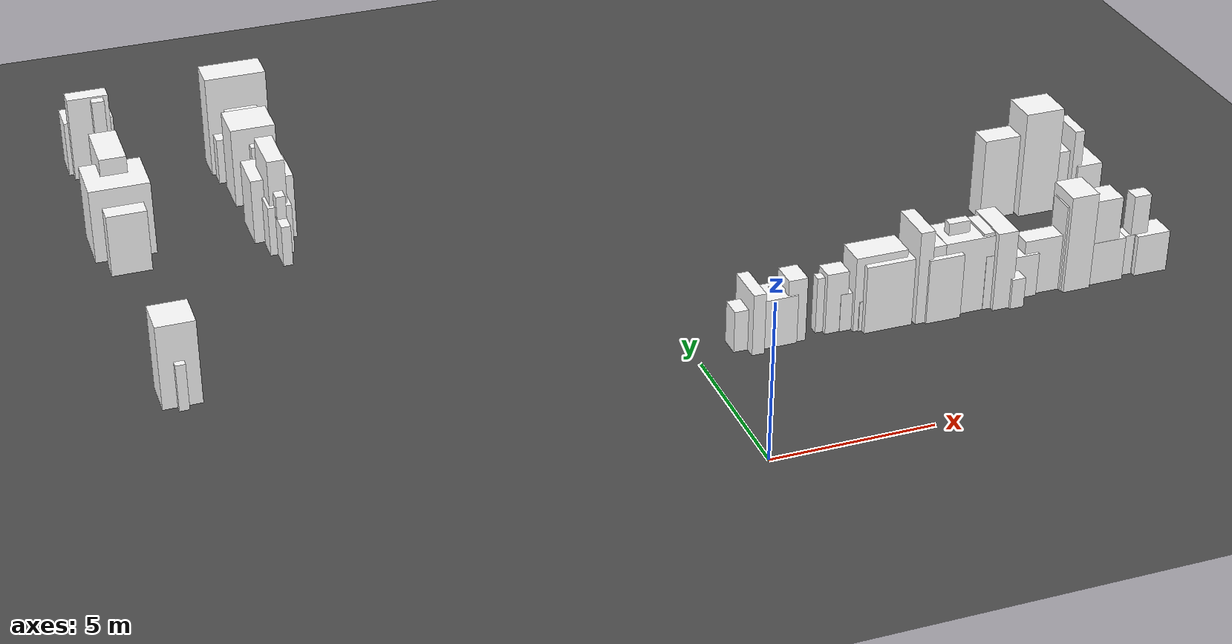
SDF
<sdf version="1.6">
 <world name="mirror_edge_world">
  <model name="ground_plane">
   <static>true</static>
   <link name="link">
    <collision name="collision">
     <geometry><plane><normal>0 0 1</normal><size>100 100</size></plane></geometry>
    </collision>
    <visual name="visual">
     <geometry><plane><normal>0 0 1</normal><size>100 100</size></plane></geometry>
     <material>
      <ambient>0.3 0.3 0.3 1</ambient>
      <diffuse>0.3 0.3 0.3 1</diffuse>
      <specular>0.5 0.5 0.5 1</specular>
      <emissive>0 0 0 1</emissive>
     </material>
    </visual>
   </link>
  </model>
  <model name="roadside_block_2_0_0">
   <static>true</static>
   <link name="link">
    <pose>15.024 10.225745282685848 0.7392112787471503 0 0 0</pose>
    <collision name="collision">
     <geometry><box><size>0.875464636903629 1.2997601926188684 1.4784225574943006</size></box></geometry>
    </collision>
    <visual name="visual">
     <geometry><box><size>0.875464636903629 1.2997601926188684 1.4784225574943006</size></box></geometry>
     <material>
      <ambient>1 1 1 1</ambient>
      <diffuse>1 1 1 1</diffuse>
      <specular>0.9 0.9 0.9 1</specular>
      <emissive>0.05 0.05 0.05 1</emissive>
     </material>
    </visual>
   </link>
  </model>
  <model name="roadside_block_2_1_0">
   <static>true</static>
   <link name="link">
    <pose>14.806410502135428 5.625745282685848 0.6816227601099163 0 0 0</pose>
    <collision name="collision">
     <geometry><box><size>1.0986000765713264 0.7998851724508571 1.3632455202198326</size></box></geometry>
    </collision>
    <visual name="visual">
     <geometry><box><size>1.0986000765713264 0.7998851724508571 1.3632455202198326</size></box></geometry>
     <material>
      <ambient>1 1 1 1</ambient>
      <diffuse>1 1 1 1</diffuse>
      <specular>0.9 0.9 0.9 1</specular>
      <emissive>0.05 0.05 0.05 1</emissive>
     </material>
    </visual>
   </link>
  </model>
  <model name="roadside_block_2_2_0">
   <static>true</static>
   <link name="link">
    <pose>14.588821004270857 10.225745282685848 1.3508811211009384 0 0 0</pose>
    <collision name="collision">
     <geometry><box><size>0.3259141878140027 1.1376463748460983 2.7017622422018768</size></box></geometry>
    </collision>
    <visual name="visual">
     <geometry><box><size>0.3259141878140027 1.1376463748460983 2.7017622422018768</size></box></geometry>
     <material>
      <ambient>1 1 1 1</ambient>
      <diffuse>1 1 1 1</diffuse>
      <specular>0.9 0.9 0.9 1</specular>
      <emissive>0.05 0.05 0.05 1</emissive>
     </material>
    </visual>
   </link>
  </model>
  <model name="roadside_block_2_3_0">
   <static>true</static>
   <link name="link">
    <pose>14.371231506406284 5.625745282685848 1.3418515928122832 0 0 0</pose>
    <collision name="collision">
     <geometry><box><size>0.5661171889919616 0.4622469377784506 2.6837031856245663</size></box></geometry>
    </collision>
    <visual name="visual">
     <geometry><box><size>0.5661171889919616 0.4622469377784506 2.6837031856245663</size></box></geometry>
     <material>
      <ambient>1 1 1 1</ambient>
      <diffuse>1 1 1 1</diffuse>
      <specular>0.9 0.9 0.9 1</specular>
      <emissive>0.05 0.05 0.05 1</emissive>
     </material>
    </visual>
   </link>
  </model>
  <model name="roadside_block_2_4_0">
   <static>true</static>
   <link name="link">
    <pose>14.153642008541713 10.225745282685848 1.0076449592887782 0 0 0</pose>
    <collision name="collision">
     <geometry><box><size>0.36960306574495383 0.9781908834425072 2.0152899185775563</size></box></geometry>
    </collision>
    <visual name="visual">
     <geometry><box><size>0.36960306574495383 0.9781908834425072 2.0152899185775563</size></box></geometry>
     <material>
      <ambient>1 1 1 1</ambient>
      <diffuse>1 1 1 1</diffuse>
      <specular>0.9 0.9 0.9 1</specular>
      <emissive>0.05 0.05 0.05 1</emissive>
     </material>
    </visual>
   </link>
  </model>
  <model name="roadside_block_2_6_0">
   <static>true</static>
   <link name="link">
    <pose>13.71846301281257 5.625745282685848 0.684649692873863 0 0 0</pose>
    <collision name="collision">
     <geometry><box><size>1.016758035561917 0.49040016937201014 1.369299385747726</size></box></geometry>
    </collision>
    <visual name="visual">
     <geometry><box><size>1.016758035561917 0.49040016937201014 1.369299385747726</size></box></geometry>
     <material>
      <ambient>1 1 1 1</ambient>
      <diffuse>1 1 1 1</diffuse>
      <specular>0.9 0.9 0.9 1</specular>
      <emissive>0.05 0.05 0.05 1</emissive>
     </material>
    </visual>
   </link>
  </model>
  <model name="roadside_block_2_7_0">
   <static>true</static>
   <link name="link">
    <pose>13.500873514947997 5.625745282685848 0.5940786670897297 0 0 0</pose>
    <collision name="collision">
     <geometry><box><size>1.1511751146548694 0.4660216357109791 1.1881573341794593</size></box></geometry>
    </collision>
    <visual name="visual">
     <geometry><box><size>1.1511751146548694 0.4660216357109791 1.1881573341794593</size></box></geometry>
     <material>
      <ambient>1 1 1 1</ambient>
      <diffuse>1 1 1 1</diffuse>
      <specular>0.9 0.9 0.9 1</specular>
      <emissive>0.05 0.05 0.05 1</emissive>
     </material>
    </visual>
   </link>
  </model>
  <model name="roadside_block_2_8_0">
   <static>true</static>
   <link name="link">
    <pose>13.283284017083426 10.225745282685848 1.8061902629708992 0 0 0</pose>
    <collision name="collision">
     <geometry><box><size>1.2891286349243378 1.1397333269764163 3.6123805259417985</size></box></geometry>
    </collision>
    <visual name="visual">
     <geometry><box><size>1.2891286349243378 1.1397333269764163 3.6123805259417985</size></box></geometry>
     <material>
      <ambient>1 1 1 1</ambient>
      <diffuse>1 1 1 1</diffuse>
      <specular>0.9 0.9 0.9 1</specular>
      <emissive>0.05 0.05 0.05 1</emissive>
     </material>
    </visual>
   </link>
  </model>
  <model name="roadside_block_2_9_0">
   <static>true</static>
   <link name="link">
    <pose>13.065694519218855 5.625745282685848 0.7224438248397338 0 0 0</pose>
    <collision name="collision">
     <geometry><box><size>1.4879687464066742 0.8666210727683945 1.4448876496794676</size></box></geometry>
    </collision>
    <visual name="visual">
     <geometry><box><size>1.4879687464066742 0.8666210727683945 1.4448876496794676</size></box></geometry>
     <material>
      <ambient>1 1 1 1</ambient>
      <diffuse>1 1 1 1</diffuse>
      <specular>0.9 0.9 0.9 1</specular>
      <emissive>0.05 0.05 0.05 1</emissive>
     </material>
    </visual>
   </link>
  </model>
  <model name="roadside_block_2_11_0">
   <static>true</static>
   <link name="link">
    <pose>12.630515523489713 5.625745282685848 1.4378195927758939 0 0 0</pose>
    <collision name="collision">
     <geometry><box><size>1.8699455723380374 0.8370411406838096 2.8756391855517878</size></box></geometry>
    </collision>
    <visual name="visual">
     <geometry><box><size>1.8699455723380374 0.8370411406838096 2.8756391855517878</size></box></geometry>
     <material>
      <ambient>1 1 1 1</ambient>
      <diffuse>1 1 1 1</diffuse>
      <specular>0.9 0.9 0.9 1</specular>
      <emissive>0.05 0.05 0.05 1</emissive>
     </material>
    </visual>
   </link>
  </model>
  <model name="roadside_block_2_12_0">
   <static>true</static>
   <link name="link">
    <pose>12.41292602562514 5.625745282685848 0.8191820796079754 0 0 0</pose>
    <collision name="collision">
     <geometry><box><size>1.9093089087806527 0.4943392511295205 1.6383641592159508</size></box></geometry>
    </collision>
    <visual name="visual">
     <geometry><box><size>1.9093089087806527 0.4943392511295205 1.6383641592159508</size></box></geometry>
     <material>
      <ambient>1 1 1 1</ambient>
      <diffuse>1 1 1 1</diffuse>
      <specular>0.9 0.9 0.9 1</specular>
      <emissive>0.05 0.05 0.05 1</emissive>
     </material>
    </visual>
   </link>
  </model>
  <model name="roadside_block_2_13_0">
   <static>true</static>
   <link name="link">
    <pose>12.195336527760569 5.625745282685848 1.6221584084387435 0 0 0</pose>
    <collision name="collision">
     <geometry><box><size>0.8820507279403396 1.1065030425565325 3.244316816877487</size></box></geometry>
    </collision>
    <visual name="visual">
     <geometry><box><size>0.8820507279403396 1.1065030425565325 3.244316816877487</size></box></geometry>
     <material>
      <ambient>1 1 1 1</ambient>
      <diffuse>1 1 1 1</diffuse>
      <specular>0.9 0.9 0.9 1</specular>
      <emissive>0.05 0.05 0.05 1</emissive>
     </material>
    </visual>
   </link>
  </model>
  <model name="roadside_block_2_14_0">
   <static>true</static>
   <link name="link">
    <pose>11.977747029895998 10.225745282685848 1.3987507540319954 0 0 0</pose>
    <collision name="collision">
     <geometry><box><size>1.1972819331040898 0.7495918262454584 2.797501508063991</size></box></geometry>
    </collision>
    <visual name="visual">
     <geometry><box><size>1.1972819331040898 0.7495918262454584 2.797501508063991</size></box></geometry>
     <material>
      <ambient>1 1 1 1</ambient>
      <diffuse>1 1 1 1</diffuse>
      <specular>0.9 0.9 0.9 1</specular>
      <emissive>0.05 0.05 0.05 1</emissive>
     </material>
    </visual>
   </link>
  </model>
  <model name="roadside_block_2_15_0">
   <static>true</static>
   <link name="link">
    <pose>11.760157532031425 10.225745282685848 1.281572895151831 0 0 0</pose>
    <collision name="collision">
     <geometry><box><size>0.6304292532576977 0.3 2.563145790303662</size></box></geometry>
    </collision>
    <visual name="visual">
     <geometry><box><size>0.6304292532576977 0.3 2.563145790303662</size></box></geometry>
     <material>
      <ambient>1 1 1 1</ambient>
      <diffuse>1 1 1 1</diffuse>
      <specular>0.9 0.9 0.9 1</specular>
      <emissive>0.05 0.05 0.05 1</emissive>
     </material>
    </visual>
   </link>
  </model>
  <model name="roadside_block_2_17_0">
   <static>true</static>
   <link name="link">
    <pose>11.324978536302282 5.625745282685848 0.9364943608962275 0 0 0</pose>
    <collision name="collision">
     <geometry><box><size>1.7507696647201454 0.6232643454699023 1.872988721792455</size></box></geometry>
    </collision>
    <visual name="visual">
     <geometry><box><size>1.7507696647201454 0.6232643454699023 1.872988721792455</size></box></geometry>
     <material>
      <ambient>1 1 1 1</ambient>
      <diffuse>1 1 1 1</diffuse>
      <specular>0.9 0.9 0.9 1</specular>
      <emissive>0.05 0.05 0.05 1</emissive>
     </material>
    </visual>
   </link>
  </model>
  <model name="roadside_block_2_21_0">
   <static>true</static>
   <link name="link">
    <pose>10.454620544843998 5.625745282685848 0.7254934506901063 0 0 0</pose>
    <collision name="collision">
     <geometry><box><size>0.8888263328184823 0.8073871088111115 1.4509869013802126</size></box></geometry>
    </collision>
    <visual name="visual">
     <geometry><box><size>0.8888263328184823 0.8073871088111115 1.4509869013802126</size></box></geometry>
     <material>
      <ambient>1 1 1 1</ambient>
      <diffuse>1 1 1 1</diffuse>
      <specular>0.9 0.9 0.9 1</specular>
      <emissive>0.05 0.05 0.05 1</emissive>
     </material>
    </visual>
   </link>
  </model>
  <model name="roadside_block_2_23_0">
   <static>true</static>
   <link name="link">
    <pose>10.019441549114854 5.625745282685848 0.5 0 0 0</pose>
    <collision name="collision">
     <geometry><box><size>0.4397146706919446 1.7392100506458879 1.0</size></box></geometry>
    </collision>
    <visual name="visual">
     <geometry><box><size>0.4397146706919446 1.7392100506458879 1.0</size></box></geometry>
     <material>
      <ambient>1 1 1 1</ambient>
      <diffuse>1 1 1 1</diffuse>
      <specular>0.9 0.9 0.9 1</specular>
      <emissive>0.05 0.05 0.05 1</emissive>
     </material>
    </visual>
   </link>
  </model>
  <model name="roadside_block_2_24_0">
   <static>true</static>
   <link name="link">
    <pose>9.801852051250282 5.625745282685848 0.5650983615844606 0 0 0</pose>
    <collision name="collision">
     <geometry><box><size>0.377347500438611 0.534883181322112 1.1301967231689212</size></box></geometry>
    </collision>
    <visual name="visual">
     <geometry><box><size>0.377347500438611 0.534883181322112 1.1301967231689212</size></box></geometry>
     <material>
      <ambient>1 1 1 1</ambient>
      <diffuse>1 1 1 1</diffuse>
      <specular>0.9 0.9 0.9 1</specular>
      <emissive>0.05 0.05 0.05 1</emissive>
     </material>
    </visual>
   </link>
  </model>
  <model name="roadside_block_2_25_0">
   <static>true</static>
   <link name="link">
    <pose>9.58426255338571 5.625745282685848 1.3097937690902584 0 0 0</pose>
    <collision name="collision">
     <geometry><box><size>0.6473917431543921 1.5448653515222426 2.6195875381805167</size></box></geometry>
    </collision>
    <visual name="visual">
     <geometry><box><size>0.6473917431543921 1.5448653515222426 2.6195875381805167</size></box></geometry>
     <material>
      <ambient>1 1 1 1</ambient>
      <diffuse>1 1 1 1</diffuse>
      <specular>0.9 0.9 0.9 1</specular>
      <emissive>0.05 0.05 0.05 1</emissive>
     </material>
    </visual>
   </link>
  </model>
  <model name="roadside_block_2_26_0">
   <static>true</static>
   <link name="link">
    <pose>9.366673055521138 5.625745282685848 1.2861534201541427 0 0 0</pose>
    <collision name="collision">
     <geometry><box><size>0.9328490559386542 1.0921323173060935 2.5723068403082854</size></box></geometry>
    </collision>
    <visual name="visual">
     <geometry><box><size>0.9328490559386542 1.0921323173060935 2.5723068403082854</size></box></geometry>
     <material>
      <ambient>1 1 1 1</ambient>
      <diffuse>1 1 1 1</diffuse>
      <specular>0.9 0.9 0.9 1</specular>
      <emissive>0.05 0.05 0.05 1</emissive>
     </material>
    </visual>
   </link>
  </model>
  <model name="roadside_block_2_27_0">
   <static>true</static>
   <link name="link">
    <pose>9.149083557656567 5.625745282685848 0.9105115828980395 0 0 0</pose>
    <collision name="collision">
     <geometry><box><size>0.3 1.242056437089518 1.821023165796079</size></box></geometry>
    </collision>
    <visual name="visual">
     <geometry><box><size>0.3 1.242056437089518 1.821023165796079</size></box></geometry>
     <material>
      <ambient>1 1 1 1</ambient>
      <diffuse>1 1 1 1</diffuse>
      <specular>0.9 0.9 0.9 1</specular>
      <emissive>0.05 0.05 0.05 1</emissive>
     </material>
    </visual>
   </link>
  </model>
  <model name="roadside_block_2_29_0">
   <static>true</static>
   <link name="link">
    <pose>8.713904561927425 5.625745282685848 1.1093169958436653 0 0 0</pose>
    <collision name="collision">
     <geometry><box><size>0.9419943427055666 1.1610717700852198 2.2186339916873306</size></box></geometry>
    </collision>
    <visual name="visual">
     <geometry><box><size>0.9419943427055666 1.1610717700852198 2.2186339916873306</size></box></geometry>
     <material>
      <ambient>1 1 1 1</ambient>
      <diffuse>1 1 1 1</diffuse>
      <specular>0.9 0.9 0.9 1</specular>
      <emissive>0.05 0.05 0.05 1</emissive>
     </material>
    </visual>
   </link>
  </model>
  <model name="roadside_block_2_30_0">
   <static>true</static>
   <link name="link">
    <pose>8.496315064062852 5.625745282685848 1.2475207114335407 0 0 0</pose>
    <collision name="collision">
     <geometry><box><size>1.6836392393170128 1.2122312203658199 2.4950414228670814</size></box></geometry>
    </collision>
    <visual name="visual">
     <geometry><box><size>1.6836392393170128 1.2122312203658199 2.4950414228670814</size></box></geometry>
     <material>
      <ambient>1 1 1 1</ambient>
      <diffuse>1 1 1 1</diffuse>
      <specular>0.9 0.9 0.9 1</specular>
      <emissive>0.05 0.05 0.05 1</emissive>
     </material>
    </visual>
   </link>
  </model>
  <model name="roadside_block_2_31_0">
   <static>true</static>
   <link name="link">
    <pose>8.27872556619828 5.625745282685848 1.4429809764240809 0 0 0</pose>
    <collision name="collision">
     <geometry><box><size>0.6828986159765528 0.3 2.8859619528481617</size></box></geometry>
    </collision>
    <visual name="visual">
     <geometry><box><size>0.6828986159765528 0.3 2.8859619528481617</size></box></geometry>
     <material>
      <ambient>1 1 1 1</ambient>
      <diffuse>1 1 1 1</diffuse>
      <specular>0.9 0.9 0.9 1</specular>
      <emissive>0.05 0.05 0.05 1</emissive>
     </material>
    </visual>
   </link>
  </model>
  <model name="roadside_block_2_33_0">
   <static>true</static>
   <link name="link">
    <pose>7.8435465704691385 5.625745282685848 0.8183533737171017 0 0 0</pose>
    <collision name="collision">
     <geometry><box><size>0.8457081302143774 0.6446204095163376 1.6367067474342034</size></box></geometry>
    </collision>
    <visual name="visual">
     <geometry><box><size>0.8457081302143774 0.6446204095163376 1.6367067474342034</size></box></geometry>
     <material>
      <ambient>1 1 1 1</ambient>
      <diffuse>1 1 1 1</diffuse>
      <specular>0.9 0.9 0.9 1</specular>
      <emissive>0.05 0.05 0.05 1</emissive>
     </material>
    </visual>
   </link>
  </model>
  <model name="roadside_block_2_34_0">
   <static>true</static>
   <link name="link">
    <pose>7.6259570726045665 5.625745282685848 1.0745291054411872 0 0 0</pose>
    <collision name="collision">
     <geometry><box><size>1.118545673101547 1.5604264048902343 2.1490582108823744</size></box></geometry>
    </collision>
    <visual name="visual">
     <geometry><box><size>1.118545673101547 1.5604264048902343 2.1490582108823744</size></box></geometry>
     <material>
      <ambient>1 1 1 1</ambient>
      <diffuse>1 1 1 1</diffuse>
      <specular>0.9 0.9 0.9 1</specular>
      <emissive>0.05 0.05 0.05 1</emissive>
     </material>
    </visual>
   </link>
  </model>
  <model name="roadside_block_2_35_0">
   <static>true</static>
   <link name="link">
    <pose>7.408367574739995 5.625745282685848 1.2415592631322383 0 0 0</pose>
    <collision name="collision">
     <geometry><box><size>0.5300787888104126 1.2003849598340577 2.4831185262644766</size></box></geometry>
    </collision>
    <visual name="visual">
     <geometry><box><size>0.5300787888104126 1.2003849598340577 2.4831185262644766</size></box></geometry>
     <material>
      <ambient>1 1 1 1</ambient>
      <diffuse>1 1 1 1</diffuse>
      <specular>0.9 0.9 0.9 1</specular>
      <emissive>0.05 0.05 0.05 1</emissive>
     </material>
    </visual>
   </link>
  </model>
  <model name="roadside_block_2_37_0">
   <static>true</static>
   <link name="link">
    <pose>6.973188579010852 5.625745282685848 1.5500684517326162 0 0 0</pose>
    <collision name="collision">
     <geometry><box><size>0.4475471592505803 1.4016279920455692 3.1001369034652324</size></box></geometry>
    </collision>
    <visual name="visual">
     <geometry><box><size>0.4475471592505803 1.4016279920455692 3.1001369034652324</size></box></geometry>
     <material>
      <ambient>1 1 1 1</ambient>
      <diffuse>1 1 1 1</diffuse>
      <specular>0.9 0.9 0.9 1</specular>
      <emissive>0.05 0.05 0.05 1</emissive>
     </material>
    </visual>
   </link>
  </model>
  <model name="roadside_block_2_41_0">
   <static>true</static>
   <link name="link">
    <pose>6.102830587552566 5.625745282685848 0.5 0 0 0</pose>
    <collision name="collision">
     <geometry><box><size>0.9813053210772473 1.144828462115135 1.0</size></box></geometry>
    </collision>
    <visual name="visual">
     <geometry><box><size>0.9813053210772473 1.144828462115135 1.0</size></box></geometry>
     <material>
      <ambient>1 1 1 1</ambient>
      <diffuse>1 1 1 1</diffuse>
      <specular>0.9 0.9 0.9 1</specular>
      <emissive>0.05 0.05 0.05 1</emissive>
     </material>
    </visual>
   </link>
  </model>
  <model name="roadside_block_2_42_0">
   <static>true</static>
   <link name="link">
    <pose>5.8852410896879945 5.625745282685848 1.119169136387194 0 0 0</pose>
    <collision name="collision">
     <geometry><box><size>1.538181435591897 1.3225595828420866 2.238338272774388</size></box></geometry>
    </collision>
    <visual name="visual">
     <geometry><box><size>1.538181435591897 1.3225595828420866 2.238338272774388</size></box></geometry>
     <material>
      <ambient>1 1 1 1</ambient>
      <diffuse>1 1 1 1</diffuse>
      <specular>0.9 0.9 0.9 1</specular>
      <emissive>0.05 0.05 0.05 1</emissive>
     </material>
    </visual>
   </link>
  </model>
  <model name="roadside_block_2_43_0">
   <static>true</static>
   <link name="link">
    <pose>5.667651591823423 5.625745282685848 1.2390401314312374 0 0 0</pose>
    <collision name="collision">
     <geometry><box><size>1.6352935257911303 0.9194360433414047 2.4780802628624747</size></box></geometry>
    </collision>
    <visual name="visual">
     <geometry><box><size>1.6352935257911303 0.9194360433414047 2.4780802628624747</size></box></geometry>
     <material>
      <ambient>1 1 1 1</ambient>
      <diffuse>1 1 1 1</diffuse>
      <specular>0.9 0.9 0.9 1</specular>
      <emissive>0.05 0.05 0.05 1</emissive>
     </material>
    </visual>
   </link>
  </model>
  <model name="roadside_block_2_44_0">
   <static>true</static>
   <link name="link">
    <pose>5.450062093958852 5.625745282685848 0.5 0 0 0</pose>
    <collision name="collision">
     <geometry><box><size>0.8848753095310729 0.9933390188270225 1.0</size></box></geometry>
    </collision>
    <visual name="visual">
     <geometry><box><size>0.8848753095310729 0.9933390188270225 1.0</size></box></geometry>
     <material>
      <ambient>1 1 1 1</ambient>
      <diffuse>1 1 1 1</diffuse>
      <specular>0.9 0.9 0.9 1</specular>
      <emissive>0.05 0.05 0.05 1</emissive>
     </material>
    </visual>
   </link>
  </model>
  <model name="roadside_block_2_47_0">
   <static>true</static>
   <link name="link">
    <pose>4.797293600365137 5.625745282685848 0.630701854843766 0 0 0</pose>
    <collision name="collision">
     <geometry><box><size>0.6485924883113862 0.6496862465946156 1.261403709687532</size></box></geometry>
    </collision>
    <visual name="visual">
     <geometry><box><size>0.6485924883113862 0.6496862465946156 1.261403709687532</size></box></geometry>
     <material>
      <ambient>1 1 1 1</ambient>
      <diffuse>1 1 1 1</diffuse>
      <specular>0.9 0.9 0.9 1</specular>
      <emissive>0.05 0.05 0.05 1</emissive>
     </material>
    </visual>
   </link>
  </model>
  <model name="roadside_block_2_49_0">
   <static>true</static>
   <link name="link">
    <pose>4.362114604635993 5.625745282685848 1.0061796800950575 0 0 0</pose>
    <collision name="collision">
     <geometry><box><size>0.6909435659374051 0.6170834770391131 2.012359360190115</size></box></geometry>
    </collision>
    <visual name="visual">
     <geometry><box><size>0.6909435659374051 0.6170834770391131 2.012359360190115</size></box></geometry>
     <material>
      <ambient>1 1 1 1</ambient>
      <diffuse>1 1 1 1</diffuse>
      <specular>0.9 0.9 0.9 1</specular>
      <emissive>0.05 0.05 0.05 1</emissive>
     </material>
    </visual>
   </link>
  </model>
  <model name="roadside_block_2_51_0">
   <static>true</static>
   <link name="link">
    <pose>3.9269356089068506 5.625745282685848 0.9243851315562086 0 0 0</pose>
    <collision name="collision">
     <geometry><box><size>0.3 0.3 1.8487702631124172</size></box></geometry>
    </collision>
    <visual name="visual">
     <geometry><box><size>0.3 0.3 1.8487702631124172</size></box></geometry>
     <material>
      <ambient>1 1 1 1</ambient>
      <diffuse>1 1 1 1</diffuse>
      <specular>0.9 0.9 0.9 1</specular>
      <emissive>0.05 0.05 0.05 1</emissive>
     </material>
    </visual>
   </link>
  </model>
  <model name="roadside_block_2_55_0">
   <static>true</static>
   <link name="link">
    <pose>3.056577617448564 5.625745282685848 1.0588972090571627 0 0 0</pose>
    <collision name="collision">
     <geometry><box><size>0.596492149771056 0.8109844572468692 2.1177944181143253</size></box></geometry>
    </collision>
    <visual name="visual">
     <geometry><box><size>0.596492149771056 0.8109844572468692 2.1177944181143253</size></box></geometry>
     <material>
      <ambient>1 1 1 1</ambient>
      <diffuse>1 1 1 1</diffuse>
      <specular>0.9 0.9 0.9 1</specular>
      <emissive>0.05 0.05 0.05 1</emissive>
     </material>
    </visual>
   </link>
  </model>
  <model name="roadside_block_2_56_0">
   <static>true</static>
   <link name="link">
    <pose>2.838988119583991 5.625745282685848 0.8558804624113636 0 0 0</pose>
    <collision name="collision">
     <geometry><box><size>0.9788149758778678 0.3245332059006778 1.7117609248227272</size></box></geometry>
    </collision>
    <visual name="visual">
     <geometry><box><size>0.9788149758778678 0.3245332059006778 1.7117609248227272</size></box></geometry>
     <material>
      <ambient>1 1 1 1</ambient>
      <diffuse>1 1 1 1</diffuse>
      <specular>0.9 0.9 0.9 1</specular>
      <emissive>0.05 0.05 0.05 1</emissive>
     </material>
    </visual>
   </link>
  </model>
  <model name="roadside_block_2_58_0">
   <static>true</static>
   <link name="link">
    <pose>2.403809123854849 5.625745282685848 0.8111303182144272 0 0 0</pose>
    <collision name="collision">
     <geometry><box><size>1.30271368364803 0.9171508806991872 1.6222606364288543</size></box></geometry>
    </collision>
    <visual name="visual">
     <geometry><box><size>1.30271368364803 0.9171508806991872 1.6222606364288543</size></box></geometry>
     <material>
      <ambient>1 1 1 1</ambient>
      <diffuse>1 1 1 1</diffuse>
      <specular>0.9 0.9 0.9 1</specular>
      <emissive>0.05 0.05 0.05 1</emissive>
     </material>
    </visual>
   </link>
  </model>
  <model name="roadside_block_2_59_0">
   <static>true</static>
   <link name="link">
    <pose>2.1862196259902777 5.625745282685848 0.656649771765105 0 0 0</pose>
    <collision name="collision">
     <geometry><box><size>1.302465499239744 0.5574668736072739 1.31329954353021</size></box></geometry>
    </collision>
    <visual name="visual">
     <geometry><box><size>1.302465499239744 0.5574668736072739 1.31329954353021</size></box></geometry>
     <material>
      <ambient>1 1 1 1</ambient>
      <diffuse>1 1 1 1</diffuse>
      <specular>0.9 0.9 0.9 1</specular>
      <emissive>0.05 0.05 0.05 1</emissive>
     </material>
    </visual>
   </link>
  </model>
  <model name="roadside_block_2_61_0">
   <static>true</static>
   <link name="link">
    <pose>1.7510406302611337 5.625745282685848 1.0111619292604532 0 0 0</pose>
    <collision name="collision">
     <geometry><box><size>0.38396001238808997 1.3321661565074876 2.0223238585209065</size></box></geometry>
    </collision>
    <visual name="visual">
     <geometry><box><size>0.38396001238808997 1.3321661565074876 2.0223238585209065</size></box></geometry>
     <material>
      <ambient>1 1 1 1</ambient>
      <diffuse>1 1 1 1</diffuse>
      <specular>0.9 0.9 0.9 1</specular>
      <emissive>0.05 0.05 0.05 1</emissive>
     </material>
    </visual>
   </link>
  </model>
  <model name="roadside_block_2_62_0">
   <static>true</static>
   <link name="link">
    <pose>1.5334511323965625 5.625745282685848 0.6796189082278044 0 0 0</pose>
    <collision name="collision">
     <geometry><box><size>0.818592819366861 0.6507712556224259 1.3592378164556087</size></box></geometry>
    </collision>
    <visual name="visual">
     <geometry><box><size>0.818592819366861 0.6507712556224259 1.3592378164556087</size></box></geometry>
     <material>
      <ambient>1 1 1 1</ambient>
      <diffuse>1 1 1 1</diffuse>
      <specular>0.9 0.9 0.9 1</specular>
      <emissive>0.05 0.05 0.05 1</emissive>
     </material>
    </visual>
   </link>
  </model>
  <model name="roadside_block_3_0_0">
   <static>true</static>
   <link name="link">
    <pose>-9.9007127676029 23.23 0.5283220150778665 0 0 0</pose>
    <collision name="collision">
     <geometry><box><size>1.2520728819044924 0.793977759617726 1.056644030155733</size></box></geometry>
    </collision>
    <visual name="visual">
     <geometry><box><size>1.2520728819044924 0.793977759617726 1.056644030155733</size></box></geometry>
     <material>
      <ambient>1 1 1 1</ambient>
      <diffuse>1 1 1 1</diffuse>
      <specular>0.9 0.9 0.9 1</specular>
      <emissive>0.05 0.05 0.05 1</emissive>
     </material>
    </visual>
   </link>
  </model>
  <model name="roadside_block_3_1_0">
   <static>true</static>
   <link name="link">
    <pose>-14.500712767602899 22.922359167137213 0.9393566646947558 0 0 0</pose>
    <collision name="collision">
     <geometry><box><size>1.5910867379060645 1.04822669336505 1.8787133293895115</size></box></geometry>
    </collision>
    <visual name="visual">
     <geometry><box><size>1.5910867379060645 1.04822669336505 1.8787133293895115</size></box></geometry>
     <material>
      <ambient>1 1 1 1</ambient>
      <diffuse>1 1 1 1</diffuse>
      <specular>0.9 0.9 0.9 1</specular>
      <emissive>0.05 0.05 0.05 1</emissive>
     </material>
    </visual>
   </link>
  </model>
  <model name="roadside_block_3_2_0">
   <static>true</static>
   <link name="link">
    <pose>-9.9007127676029 22.614718334274425 0.7489803434791399 0 0 0</pose>
    <collision name="collision">
     <geometry><box><size>0.805564956039459 0.6430831705526989 1.4979606869582798</size></box></geometry>
    </collision>
    <visual name="visual">
     <geometry><box><size>0.805564956039459 0.6430831705526989 1.4979606869582798</size></box></geometry>
     <material>
      <ambient>1 1 1 1</ambient>
      <diffuse>1 1 1 1</diffuse>
      <specular>0.9 0.9 0.9 1</specular>
      <emissive>0.05 0.05 0.05 1</emissive>
     </material>
    </visual>
   </link>
  </model>
  <model name="roadside_block_3_3_0">
   <static>true</static>
   <link name="link">
    <pose>-14.500712767602899 22.307077501411634 1.4372165931057086 0 0 0</pose>
    <collision name="collision">
     <geometry><box><size>1.321299346986358 0.5465805731967793 2.874433186211417</size></box></geometry>
    </collision>
    <visual name="visual">
     <geometry><box><size>1.321299346986358 0.5465805731967793 2.874433186211417</size></box></geometry>
     <material>
      <ambient>1 1 1 1</ambient>
      <diffuse>1 1 1 1</diffuse>
      <specular>0.9 0.9 0.9 1</specular>
      <emissive>0.05 0.05 0.05 1</emissive>
     </material>
    </visual>
   </link>
  </model>
  <model name="roadside_block_3_4_0">
   <static>true</static>
   <link name="link">
    <pose>-9.9007127676029 21.999436668548846 1.601359428350366 0 0 0</pose>
    <collision name="collision">
     <geometry><box><size>1.1701330476406784 0.5509045353453018 3.202718856700732</size></box></geometry>
    </collision>
    <visual name="visual">
     <geometry><box><size>1.1701330476406784 0.5509045353453018 3.202718856700732</size></box></geometry>
     <material>
      <ambient>1 1 1 1</ambient>
      <diffuse>1 1 1 1</diffuse>
      <specular>0.9 0.9 0.9 1</specular>
      <emissive>0.05 0.05 0.05 1</emissive>
     </material>
    </visual>
   </link>
  </model>
  <model name="roadside_block_3_5_0">
   <static>true</static>
   <link name="link">
    <pose>-9.9007127676029 21.691795835686058 1.3848739043786402 0 0 0</pose>
    <collision name="collision">
     <geometry><box><size>1.4845251924063434 1.3836748028173091 2.7697478087572804</size></box></geometry>
    </collision>
    <visual name="visual">
     <geometry><box><size>1.4845251924063434 1.3836748028173091 2.7697478087572804</size></box></geometry>
     <material>
      <ambient>1 1 1 1</ambient>
      <diffuse>1 1 1 1</diffuse>
      <specular>0.9 0.9 0.9 1</specular>
      <emissive>0.05 0.05 0.05 1</emissive>
     </material>
    </visual>
   </link>
  </model>
  <model name="roadside_block_3_6_0">
   <static>true</static>
   <link name="link">
    <pose>-9.9007127676029 21.38415500282327 1.722363205603593 0 0 0</pose>
    <collision name="collision">
     <geometry><box><size>1.9850508703909369 1.056176866787922 3.444726411207186</size></box></geometry>
    </collision>
    <visual name="visual">
     <geometry><box><size>1.9850508703909369 1.056176866787922 3.444726411207186</size></box></geometry>
     <material>
      <ambient>1 1 1 1</ambient>
      <diffuse>1 1 1 1</diffuse>
      <specular>0.9 0.9 0.9 1</specular>
      <emissive>0.05 0.05 0.05 1</emissive>
     </material>
    </visual>
   </link>
  </model>
  <model name="roadside_block_3_7_0">
   <static>true</static>
   <link name="link">
    <pose>-9.9007127676029 21.076514169960483 0.5784851238044397 0 0 0</pose>
    <collision name="collision">
     <geometry><box><size>0.9052011020908876 0.47874029016777 1.1569702476088795</size></box></geometry>
    </collision>
    <visual name="visual">
     <geometry><box><size>0.9052011020908876 0.47874029016777 1.1569702476088795</size></box></geometry>
     <material>
      <ambient>1 1 1 1</ambient>
      <diffuse>1 1 1 1</diffuse>
      <specular>0.9 0.9 0.9 1</specular>
      <emissive>0.05 0.05 0.05 1</emissive>
     </material>
    </visual>
   </link>
  </model>
  <model name="roadside_block_3_8_0">
   <static>true</static>
   <link name="link">
    <pose>-9.9007127676029 20.76887333709769 0.9592430277244359 0 0 0</pose>
    <collision name="collision">
     <geometry><box><size>0.9485239765665777 1.5638961093183157 1.9184860554488719</size></box></geometry>
    </collision>
    <visual name="visual">
     <geometry><box><size>0.9485239765665777 1.5638961093183157 1.9184860554488719</size></box></geometry>
     <material>
      <ambient>1 1 1 1</ambient>
      <diffuse>1 1 1 1</diffuse>
      <specular>0.9 0.9 0.9 1</specular>
      <emissive>0.05 0.05 0.05 1</emissive>
     </material>
    </visual>
   </link>
  </model>
  <model name="roadside_block_3_9_0">
   <static>true</static>
   <link name="link">
    <pose>-9.9007127676029 20.461232504234903 0.7787943468000686 0 0 0</pose>
    <collision name="collision">
     <geometry><box><size>1.7830791602234894 0.47440610704050823 1.5575886936001373</size></box></geometry>
    </collision>
    <visual name="visual">
     <geometry><box><size>1.7830791602234894 0.47440610704050823 1.5575886936001373</size></box></geometry>
     <material>
      <ambient>1 1 1 1</ambient>
      <diffuse>1 1 1 1</diffuse>
      <specular>0.9 0.9 0.9 1</specular>
      <emissive>0.05 0.05 0.05 1</emissive>
     </material>
    </visual>
   </link>
  </model>
  <model name="roadside_block_3_10_0">
   <static>true</static>
   <link name="link">
    <pose>-9.9007127676029 20.153591671372116 1.2725636001027878 0 0 0</pose>
    <collision name="collision">
     <geometry><box><size>1.0653357374515209 0.5033546028002753 2.5451272002055756</size></box></geometry>
    </collision>
    <visual name="visual">
     <geometry><box><size>1.0653357374515209 0.5033546028002753 2.5451272002055756</size></box></geometry>
     <material>
      <ambient>1 1 1 1</ambient>
      <diffuse>1 1 1 1</diffuse>
      <specular>0.9 0.9 0.9 1</specular>
      <emissive>0.05 0.05 0.05 1</emissive>
     </material>
    </visual>
   </link>
  </model>
  <model name="roadside_block_3_11_0">
   <static>true</static>
   <link name="link">
    <pose>-14.500712767602899 19.845950838509328 0.706478486712435 0 0 0</pose>
    <collision name="collision">
     <geometry><box><size>0.5646471526226156 1.1627954798665787 1.41295697342487</size></box></geometry>
    </collision>
    <visual name="visual">
     <geometry><box><size>0.5646471526226156 1.1627954798665787 1.41295697342487</size></box></geometry>
     <material>
      <ambient>1 1 1 1</ambient>
      <diffuse>1 1 1 1</diffuse>
      <specular>0.9 0.9 0.9 1</specular>
      <emissive>0.05 0.05 0.05 1</emissive>
     </material>
    </visual>
   </link>
  </model>
  <model name="roadside_block_3_12_0">
   <static>true</static>
   <link name="link">
    <pose>-14.500712767602899 19.538310005646537 2.0 0 0 0</pose>
    <collision name="collision">
     <geometry><box><size>0.39356129057219813 0.3 4.0</size></box></geometry>
    </collision>
    <visual name="visual">
     <geometry><box><size>0.39356129057219813 0.3 4.0</size></box></geometry>
     <material>
      <ambient>1 1 1 1</ambient>
      <diffuse>1 1 1 1</diffuse>
      <specular>0.9 0.9 0.9 1</specular>
      <emissive>0.05 0.05 0.05 1</emissive>
     </material>
    </visual>
   </link>
  </model>
  <model name="roadside_block_3_13_0">
   <static>true</static>
   <link name="link">
    <pose>-9.9007127676029 19.23066917278375 1.355316044856734 0 0 0</pose>
    <collision name="collision">
     <geometry><box><size>1.434772369740222 1.3766080799465734 2.710632089713468</size></box></geometry>
    </collision>
    <visual name="visual">
     <geometry><box><size>1.434772369740222 1.3766080799465734 2.710632089713468</size></box></geometry>
     <material>
      <ambient>1 1 1 1</ambient>
      <diffuse>1 1 1 1</diffuse>
      <specular>0.9 0.9 0.9 1</specular>
      <emissive>0.05 0.05 0.05 1</emissive>
     </material>
    </visual>
   </link>
  </model>
  <model name="roadside_block_3_14_0">
   <static>true</static>
   <link name="link">
    <pose>-9.9007127676029 18.92302833992096 0.9069651205734921 0 0 0</pose>
    <collision name="collision">
     <geometry><box><size>1.3891368997434683 0.39831591984303094 1.8139302411469842</size></box></geometry>
    </collision>
    <visual name="visual">
     <geometry><box><size>1.3891368997434683 0.39831591984303094 1.8139302411469842</size></box></geometry>
     <material>
      <ambient>1 1 1 1</ambient>
      <diffuse>1 1 1 1</diffuse>
      <specular>0.9 0.9 0.9 1</specular>
      <emissive>0.05 0.05 0.05 1</emissive>
     </material>
    </visual>
   </link>
  </model>
  <model name="roadside_block_3_15_0">
   <static>true</static>
   <link name="link">
    <pose>-9.9007127676029 18.615387507058173 1.0788316141020116 0 0 0</pose>
    <collision name="collision">
     <geometry><box><size>0.3 0.705644671607903 2.157663228204023</size></box></geometry>
    </collision>
    <visual name="visual">
     <geometry><box><size>0.3 0.705644671607903 2.157663228204023</size></box></geometry>
     <material>
      <ambient>1 1 1 1</ambient>
      <diffuse>1 1 1 1</diffuse>
      <specular>0.9 0.9 0.9 1</specular>
      <emissive>0.05 0.05 0.05 1</emissive>
     </material>
    </visual>
   </link>
  </model>
  <model name="roadside_block_3_16_0">
   <static>true</static>
   <link name="link">
    <pose>-14.500712767602899 18.307746674195386 1.5199066887870551 0 0 0</pose>
    <collision name="collision">
     <geometry><box><size>0.8484794352449505 1.823273233354723 3.0398133775741103</size></box></geometry>
    </collision>
    <visual name="visual">
     <geometry><box><size>0.8484794352449505 1.823273233354723 3.0398133775741103</size></box></geometry>
     <material>
      <ambient>1 1 1 1</ambient>
      <diffuse>1 1 1 1</diffuse>
      <specular>0.9 0.9 0.9 1</specular>
      <emissive>0.05 0.05 0.05 1</emissive>
     </material>
    </visual>
   </link>
  </model>
  <model name="roadside_block_3_17_0">
   <static>true</static>
   <link name="link">
    <pose>-14.500712767602899 18.000105841332598 0.9945593005234289 0 0 0</pose>
    <collision name="collision">
     <geometry><box><size>1.0424279697636956 0.4343278320354108 1.9891186010468578</size></box></geometry>
    </collision>
    <visual name="visual">
     <geometry><box><size>1.0424279697636956 0.4343278320354108 1.9891186010468578</size></box></geometry>
     <material>
      <ambient>1 1 1 1</ambient>
      <diffuse>1 1 1 1</diffuse>
      <specular>0.9 0.9 0.9 1</specular>
      <emissive>0.05 0.05 0.05 1</emissive>
     </material>
    </visual>
   </link>
  </model>
  <model name="roadside_block_3_18_0">
   <static>true</static>
   <link name="link">
    <pose>-9.9007127676029 17.692465008469807 0.659043708202577 0 0 0</pose>
    <collision name="collision">
     <geometry><box><size>0.38486497655503515 1.804294839618402 1.318087416405154</size></box></geometry>
    </collision>
    <visual name="visual">
     <geometry><box><size>0.38486497655503515 1.804294839618402 1.318087416405154</size></box></geometry>
     <material>
      <ambient>1 1 1 1</ambient>
      <diffuse>1 1 1 1</diffuse>
      <specular>0.9 0.9 0.9 1</specular>
      <emissive>0.05 0.05 0.05 1</emissive>
     </material>
    </visual>
   </link>
  </model>
  <model name="roadside_block_3_19_0">
   <static>true</static>
   <link name="link">
    <pose>-14.500712767602899 17.38482417560702 1.2400674804082397 0 0 0</pose>
    <collision name="collision">
     <geometry><box><size>1.9125892782520637 1.7273695960574922 2.4801349608164793</size></box></geometry>
    </collision>
    <visual name="visual">
     <geometry><box><size>1.9125892782520637 1.7273695960574922 2.4801349608164793</size></box></geometry>
     <material>
      <ambient>1 1 1 1</ambient>
      <diffuse>1 1 1 1</diffuse>
      <specular>0.9 0.9 0.9 1</specular>
      <emissive>0.05 0.05 0.05 1</emissive>
     </material>
    </visual>
   </link>
  </model>
  <model name="roadside_block_3_20_0">
   <static>true</static>
   <link name="link">
    <pose>-14.500712767602899 17.07718334274423 0.8122411369368142 0 0 0</pose>
    <collision name="collision">
     <geometry><box><size>0.7294824055247332 1.6272044479079342 1.6244822738736284</size></box></geometry>
    </collision>
    <visual name="visual">
     <geometry><box><size>0.7294824055247332 1.6272044479079342 1.6244822738736284</size></box></geometry>
     <material>
      <ambient>1 1 1 1</ambient>
      <diffuse>1 1 1 1</diffuse>
      <specular>0.9 0.9 0.9 1</specular>
      <emissive>0.05 0.05 0.05 1</emissive>
     </material>
    </visual>
   </link>
  </model>
  <model name="roadside_block_3_21_0">
   <static>true</static>
   <link name="link">
    <pose>-9.9007127676029 16.769542509881443 1.0937898353842963 0 0 0</pose>
    <collision name="collision">
     <geometry><box><size>1.349531421999527 1.4130354844970907 2.1875796707685926</size></box></geometry>
    </collision>
    <visual name="visual">
     <geometry><box><size>1.349531421999527 1.4130354844970907 2.1875796707685926</size></box></geometry>
     <material>
      <ambient>1 1 1 1</ambient>
      <diffuse>1 1 1 1</diffuse>
      <specular>0.9 0.9 0.9 1</specular>
      <emissive>0.05 0.05 0.05 1</emissive>
     </material>
    </visual>
   </link>
  </model>
  <model name="roadside_block_3_22_0">
   <static>true</static>
   <link name="link">
    <pose>-9.9007127676029 16.461901677018652 0.926136046597652 0 0 0</pose>
    <collision name="collision">
     <geometry><box><size>0.6866137329905261 0.5841646399030272 1.852272093195304</size></box></geometry>
    </collision>
    <visual name="visual">
     <geometry><box><size>0.6866137329905261 0.5841646399030272 1.852272093195304</size></box></geometry>
     <material>
      <ambient>1 1 1 1</ambient>
      <diffuse>1 1 1 1</diffuse>
      <specular>0.9 0.9 0.9 1</specular>
      <emissive>0.05 0.05 0.05 1</emissive>
     </material>
    </visual>
   </link>
  </model>
  <model name="roadside_block_3_23_0">
   <static>true</static>
   <link name="link">
    <pose>-9.9007127676029 16.154260844155864 1.5890741030460518 0 0 0</pose>
    <collision name="collision">
     <geometry><box><size>0.5550112621472736 1.6779964403074126 3.1781482060921036</size></box></geometry>
    </collision>
    <visual name="visual">
     <geometry><box><size>0.5550112621472736 1.6779964403074126 3.1781482060921036</size></box></geometry>
     <material>
      <ambient>1 1 1 1</ambient>
      <diffuse>1 1 1 1</diffuse>
      <specular>0.9 0.9 0.9 1</specular>
      <emissive>0.05 0.05 0.05 1</emissive>
     </material>
    </visual>
   </link>
  </model>
  <model name="roadside_block_3_24_0">
   <static>true</static>
   <link name="link">
    <pose>-14.500712767602899 15.846620011293076 1.0340539533035904 0 0 0</pose>
    <collision name="collision">
     <geometry><box><size>1.2592946874112294 0.5871126446626203 2.068107906607181</size></box></geometry>
    </collision>
    <visual name="visual">
     <geometry><box><size>1.2592946874112294 0.5871126446626203 2.068107906607181</size></box></geometry>
     <material>
      <ambient>1 1 1 1</ambient>
      <diffuse>1 1 1 1</diffuse>
      <specular>0.9 0.9 0.9 1</specular>
      <emissive>0.05 0.05 0.05 1</emissive>
     </material>
    </visual>
   </link>
  </model>
  <model name="roadside_block_3_25_0">
   <static>true</static>
   <link name="link">
    <pose>-9.9007127676029 15.538979178430289 0.832509776406497 0 0 0</pose>
    <collision name="collision">
     <geometry><box><size>0.7541434800471247 0.7552128565145928 1.665019552812994</size></box></geometry>
    </collision>
    <visual name="visual">
     <geometry><box><size>0.7541434800471247 0.7552128565145928 1.665019552812994</size></box></geometry>
     <material>
      <ambient>1 1 1 1</ambient>
      <diffuse>1 1 1 1</diffuse>
      <specular>0.9 0.9 0.9 1</specular>
      <emissive>0.05 0.05 0.05 1</emissive>
     </material>
    </visual>
   </link>
  </model>
  <model name="roadside_block_3_26_0">
   <static>true</static>
   <link name="link">
    <pose>-9.9007127676029 15.231338345567499 1.0685242283302607 0 0 0</pose>
    <collision name="collision">
     <geometry><box><size>0.3 0.6103150964956133 2.1370484566605215</size></box></geometry>
    </collision>
    <visual name="visual">
     <geometry><box><size>0.3 0.6103150964956133 2.1370484566605215</size></box></geometry>
     <material>
      <ambient>1 1 1 1</ambient>
      <diffuse>1 1 1 1</diffuse>
      <specular>0.9 0.9 0.9 1</specular>
      <emissive>0.05 0.05 0.05 1</emissive>
     </material>
    </visual>
   </link>
  </model>
  <model name="roadside_block_3_27_0">
   <static>true</static>
   <link name="link">
    <pose>-9.9007127676029 14.923697512704711 0.681966145412177 0 0 0</pose>
    <collision name="collision">
     <geometry><box><size>0.3 1.0240872926510953 1.363932290824354</size></box></geometry>
    </collision>
    <visual name="visual">
     <geometry><box><size>0.3 1.0240872926510953 1.363932290824354</size></box></geometry>
     <material>
      <ambient>1 1 1 1</ambient>
      <diffuse>1 1 1 1</diffuse>
      <specular>0.9 0.9 0.9 1</specular>
      <emissive>0.05 0.05 0.05 1</emissive>
     </material>
    </visual>
   </link>
  </model>
  <model name="roadside_block_3_47_0">
   <static>true</static>
   <link name="link">
    <pose>-14.500712767602899 8.770880855448942 1.0261650287332775 0 0 0</pose>
    <collision name="collision">
     <geometry><box><size>0.6968464232955229 1.2338792173386648 2.052330057466555</size></box></geometry>
    </collision>
    <visual name="visual">
     <geometry><box><size>0.6968464232955229 1.2338792173386648 2.052330057466555</size></box></geometry>
     <material>
      <ambient>1 1 1 1</ambient>
      <diffuse>1 1 1 1</diffuse>
      <specular>0.9 0.9 0.9 1</specular>
      <emissive>0.05 0.05 0.05 1</emissive>
     </material>
    </visual>
   </link>
  </model>
  <model name="roadside_block_3_48_0">
   <static>true</static>
   <link name="link">
    <pose>-14.500712767602899 8.463240022586152 1.362462917329631 0 0 0</pose>
    <collision name="collision">
     <geometry><box><size>1.1696224473980081 1.2074507369804104 2.724925834659262</size></box></geometry>
    </collision>
    <visual name="visual">
     <geometry><box><size>1.1696224473980081 1.2074507369804104 2.724925834659262</size></box></geometry>
     <material>
      <ambient>1 1 1 1</ambient>
      <diffuse>1 1 1 1</diffuse>
      <specular>0.9 0.9 0.9 1</specular>
      <emissive>0.05 0.05 0.05 1</emissive>
     </material>
    </visual>
   </link>
  </model>
  <model name="roadside_block_3_49_0">
   <static>true</static>
   <link name="link">
    <pose>-14.500712767602899 8.155599189723365 0.7577243133122263 0 0 0</pose>
    <collision name="collision">
     <geometry><box><size>0.3 1.0320271922707305 1.5154486266244527</size></box></geometry>
    </collision>
    <visual name="visual">
     <geometry><box><size>0.3 1.0320271922707305 1.5154486266244527</size></box></geometry>
     <material>
      <ambient>1 1 1 1</ambient>
      <diffuse>1 1 1 1</diffuse>
      <specular>0.9 0.9 0.9 1</specular>
      <emissive>0.05 0.05 0.05 1</emissive>
     </material>
    </visual>
   </link>
  </model>
 </world>
</sdf>
